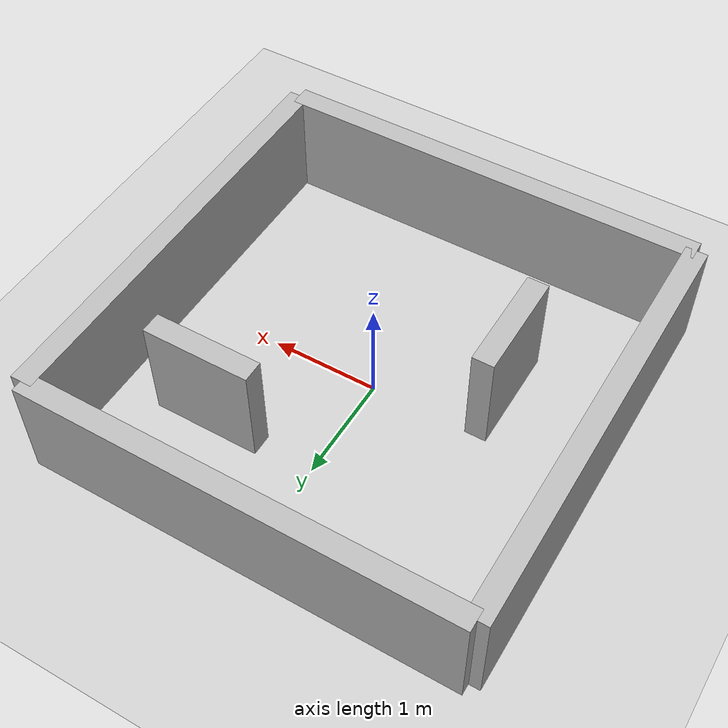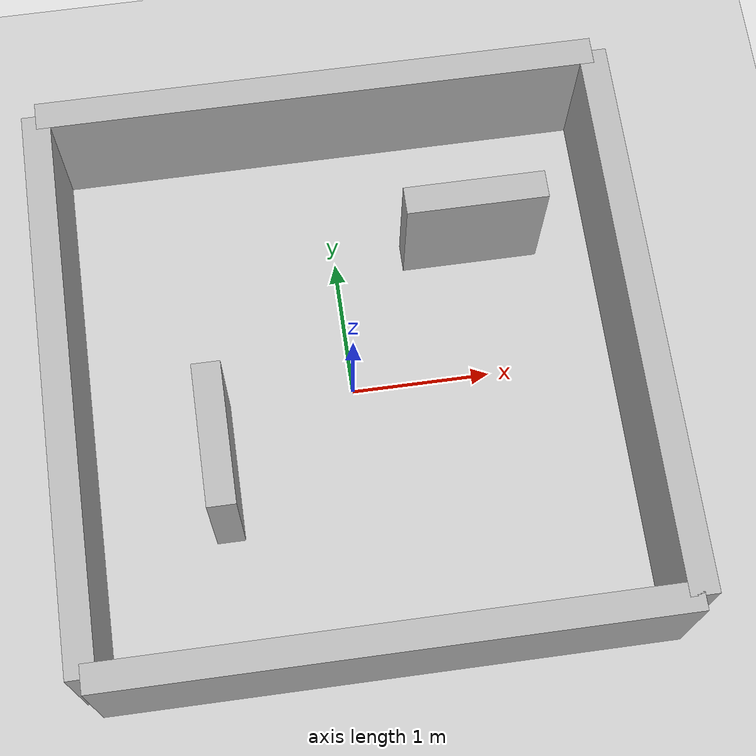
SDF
<?xml version="1.0" ?>
<sdf version="1.6">
  <world name="tank_maze">
    <include><uri>model://sun</uri></include>
    <include><uri>model://ground_plane</uri></include>

    <model name="wall_front"><pose>2 0 0.5 0 0 0</pose><link name="link"><collision name="col"><geometry><box><size>0.2 4 1</size></box></geometry></collision><visual name="vis"><geometry><box><size>0.2 4 1</size></box></geometry></visual></link></model>
    <model name="wall_back"><pose>-2 0 0.5 0 0 0</pose><link name="link"><collision name="col"><geometry><box><size>0.2 4 1</size></box></geometry></collision><visual name="vis"><geometry><box><size>0.2 4 1</size></box></geometry></visual></link></model>
    <model name="wall_left"><pose>0 2 0.5 0 0 1.5708</pose><link name="link"><collision name="col"><geometry><box><size>0.2 4 1</size></box></geometry></collision><visual name="vis"><geometry><box><size>0.2 4 1</size></box></geometry></visual></link></model>
    <model name="wall_right"><pose>0 -2 0.5 0 0 1.5708</pose><link name="link"><collision name="col"><geometry><box><size>0.2 4 1</size></box></geometry></collision><visual name="vis"><geometry><box><size>0.2 4 1</size></box></geometry></visual></link></model>

    <model name="obstacle_1"><pose>1 1 0.5 0 0 0</pose><link name="link"><collision name="col"><geometry><box><size>1 0.2 1</size></box></geometry></collision><visual name="vis"><geometry><box><size>1 0.2 1</size></box></geometry></visual></link></model>
    <model name="obstacle_2"><pose>-1 -0.5 0.5 0 0 1.5708</pose><link name="link"><collision name="col"><geometry><box><size>1 0.2 1</size></box></geometry></collision><visual name="vis"><geometry><box><size>1 0.2 1</size></box></geometry></visual></link></model>
  </world>
</sdf>
